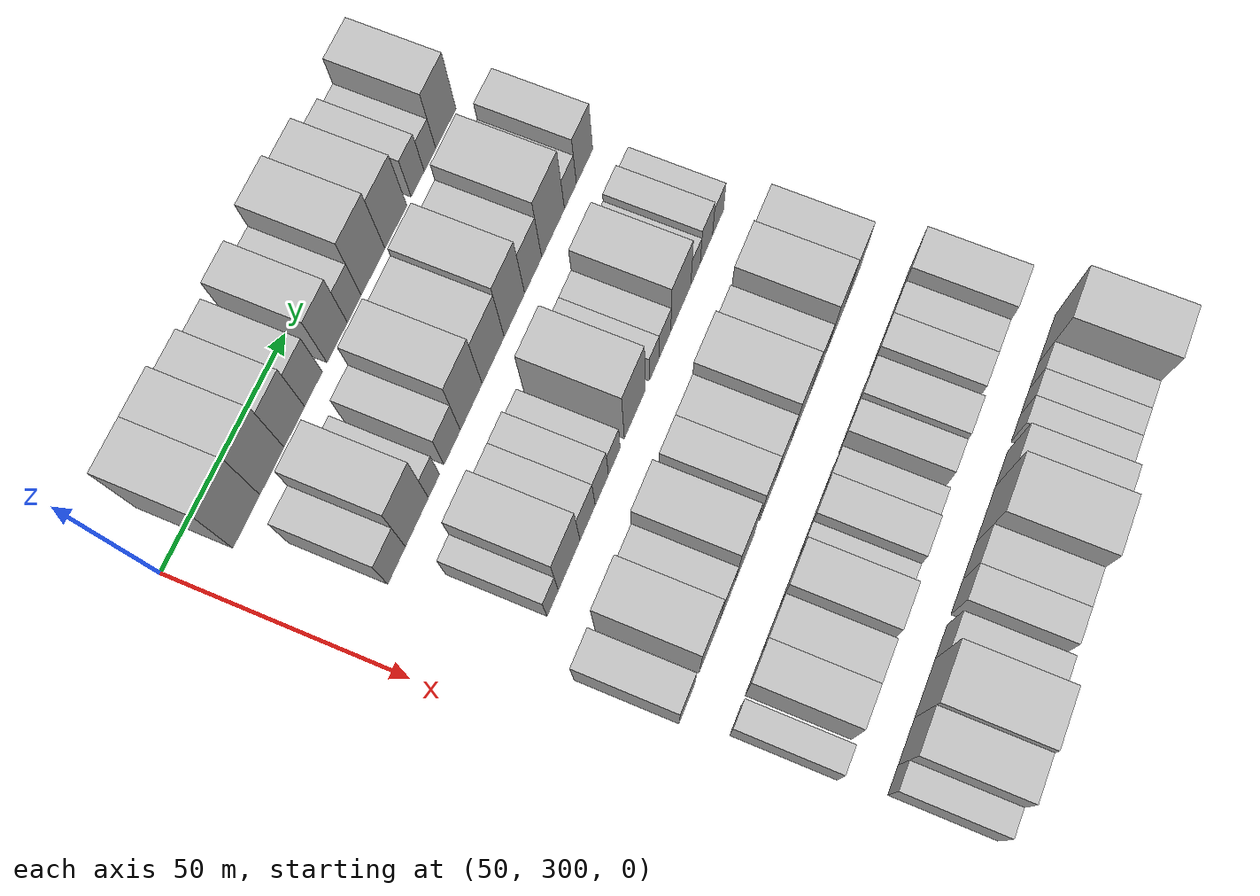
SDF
<sdf version="1.6">
 <world name="default">
  <model name="building_94">
   <static>1</static>
   <pose>50.0000 314.5043 0 0.000000 0.000000 0.000000</pose>
   <link name="link">
    <pose>0 0 12.00 0 0 0</pose>
    <collision name="collision"><geometry><box><size>20.0000 10.8248 24.0000</size></box></geometry></collision>
    <visual name="visual">
     <cast_shadows>0</cast_shadows>
     <geometry><box><size>20.0000 10.8248 24.0000</size></box></geometry>
     <material>
      <script>
       <uri>model://HANNAS_wall/materials/scripts</uri>
       <uri>model://HANNAS_wall/materials/textures</uri>
       <name>vrc/HANNAS_wall</name>
      </script>
     </material>
    </visual>
   </link>
  </model>
  <model name="building_95">
   <static>1</static>
   <pose>50.0000 324.8412 0 0.000000 0.000000 0.000000</pose>
   <link name="link">
    <pose>0 0 12.00 0 0 0</pose>
    <collision name="collision"><geometry><box><size>20.0000 9.8490 24.0000</size></box></geometry></collision>
    <visual name="visual">
     <cast_shadows>0</cast_shadows>
     <geometry><box><size>20.0000 9.8490 24.0000</size></box></geometry>
     <material>
      <script>
       <uri>model://HANNAS_wall/materials/scripts</uri>
       <uri>model://HANNAS_wall/materials/textures</uri>
       <name>vrc/HANNAS_wall</name>
      </script>
     </material>
    </visual>
   </link>
  </model>
  <model name="building_96">
   <static>1</static>
   <pose>50.0000 334.0753 0 0.000000 0.000000 0.000000</pose>
   <link name="link">
    <pose>0 0 10.50 0 0 0</pose>
    <collision name="collision"><geometry><box><size>20.0000 8.6192 21.0000</size></box></geometry></collision>
    <visual name="visual">
     <cast_shadows>0</cast_shadows>
     <geometry><box><size>20.0000 8.6192 21.0000</size></box></geometry>
     <material>
      <script>
       <uri>model://HANNAS_wall/materials/scripts</uri>
       <uri>model://HANNAS_wall/materials/textures</uri>
       <name>vrc/HANNAS_wall</name>
      </script>
     </material>
    </visual>
   </link>
  </model>
  <model name="building_97">
   <static>1</static>
   <pose>50.0000 342.1089 0 0.000000 0.000000 0.000000</pose>
   <link name="link">
    <pose>0 0 9.00 0 0 0</pose>
    <collision name="collision"><geometry><box><size>20.0000 7.4479 18.0000</size></box></geometry></collision>
    <visual name="visual">
     <cast_shadows>0</cast_shadows>
     <geometry><box><size>20.0000 7.4479 18.0000</size></box></geometry>
     <material>
      <script>
       <uri>model://HANNAS_wall/materials/scripts</uri>
       <uri>model://HANNAS_wall/materials/textures</uri>
       <name>vrc/HANNAS_wall</name>
      </script>
     </material>
    </visual>
   </link>
  </model>
  <model name="building_98">
   <static>1</static>
   <pose>50.0000 352.2391 0 0.000000 0.000000 0.000000</pose>
   <link name="link">
    <pose>0 0 10.50 0 0 0</pose>
    <collision name="collision"><geometry><box><size>20.0000 8.8126 21.0000</size></box></geometry></collision>
    <visual name="visual">
     <cast_shadows>0</cast_shadows>
     <geometry><box><size>20.0000 8.8126 21.0000</size></box></geometry>
     <material>
      <script>
       <uri>model://HANNAS_wall/materials/scripts</uri>
       <uri>model://HANNAS_wall/materials/textures</uri>
       <name>vrc/HANNAS_wall</name>
      </script>
     </material>
    </visual>
   </link>
  </model>
  <model name="building_99">
   <static>1</static>
   <pose>50.0000 359.6676 0 0.000000 0.000000 0.000000</pose>
   <link name="link">
    <pose>0 0 7.50 0 0 0</pose>
    <collision name="collision"><geometry><box><size>20.0000 6.0443 15.0000</size></box></geometry></collision>
    <visual name="visual">
     <cast_shadows>0</cast_shadows>
     <geometry><box><size>20.0000 6.0443 15.0000</size></box></geometry>
     <material>
      <script>
       <uri>model://HANNAS_wall/materials/scripts</uri>
       <uri>model://HANNAS_wall/materials/textures</uri>
       <name>vrc/HANNAS_wall</name>
      </script>
     </material>
    </visual>
   </link>
  </model>
  <model name="building_100">
   <static>1</static>
   <pose>50.0000 367.9929 0 0.000000 0.000000 0.000000</pose>
   <link name="link">
    <pose>0 0 12.00 0 0 0</pose>
    <collision name="collision"><geometry><box><size>20.0000 10.6063 24.0000</size></box></geometry></collision>
    <visual name="visual">
     <cast_shadows>0</cast_shadows>
     <geometry><box><size>20.0000 10.6063 24.0000</size></box></geometry>
     <material>
      <script>
       <uri>model://HANNAS_wall/materials/scripts</uri>
       <uri>model://HANNAS_wall/materials/textures</uri>
       <name>vrc/HANNAS_wall</name>
      </script>
     </material>
    </visual>
   </link>
  </model>
  <model name="building_101">
   <static>1</static>
   <pose>50.0000 378.2793 0 0.000000 0.000000 0.000000</pose>
   <link name="link">
    <pose>0 0 10.50 0 0 0</pose>
    <collision name="collision"><geometry><box><size>20.0000 9.9666 21.0000</size></box></geometry></collision>
    <visual name="visual">
     <cast_shadows>0</cast_shadows>
     <geometry><box><size>20.0000 9.9666 21.0000</size></box></geometry>
     <material>
      <script>
       <uri>model://HANNAS_wall/materials/scripts</uri>
       <uri>model://HANNAS_wall/materials/textures</uri>
       <name>vrc/HANNAS_wall</name>
      </script>
     </material>
    </visual>
   </link>
  </model>
  <model name="building_102">
   <static>1</static>
   <pose>50.0000 388.3004 0 0.000000 0.000000 0.000000</pose>
   <link name="link">
    <pose>0 0 7.50 0 0 0</pose>
    <collision name="collision"><geometry><box><size>20.0000 6.0756 15.0000</size></box></geometry></collision>
    <visual name="visual">
     <cast_shadows>0</cast_shadows>
     <geometry><box><size>20.0000 6.0756 15.0000</size></box></geometry>
     <material>
      <script>
       <uri>model://HANNAS_wall/materials/scripts</uri>
       <uri>model://HANNAS_wall/materials/textures</uri>
       <name>vrc/HANNAS_wall</name>
      </script>
     </material>
    </visual>
   </link>
  </model>
  <model name="building_103">
   <static>1</static>
   <pose>50.0000 394.0320 0 0.000000 0.000000 0.000000</pose>
   <link name="link">
    <pose>0 0 6.00 0 0 0</pose>
    <collision name="collision"><geometry><box><size>20.0000 5.3875 12.0000</size></box></geometry></collision>
    <visual name="visual">
     <cast_shadows>0</cast_shadows>
     <geometry><box><size>20.0000 5.3875 12.0000</size></box></geometry>
     <material>
      <script>
       <uri>model://HANNAS_wall/materials/scripts</uri>
       <uri>model://HANNAS_wall/materials/textures</uri>
       <name>vrc/HANNAS_wall</name>
      </script>
     </material>
    </visual>
   </link>
  </model>
  <model name="building_104">
   <static>1</static>
   <pose>50.0000 401.5370 0 0.000000 0.000000 0.000000</pose>
   <link name="link">
    <pose>0 0 10.50 0 0 0</pose>
    <collision name="collision"><geometry><box><size>20.0000 9.6226 21.0000</size></box></geometry></collision>
    <visual name="visual">
     <cast_shadows>0</cast_shadows>
     <geometry><box><size>20.0000 9.6226 21.0000</size></box></geometry>
     <material>
      <script>
       <uri>model://HANNAS_wall/materials/scripts</uri>
       <uri>model://HANNAS_wall/materials/textures</uri>
       <name>vrc/HANNAS_wall</name>
      </script>
     </material>
    </visual>
   </link>
  </model>
  <model name="building_201">
   <static>1</static>
   <pose>79.0000 317.5472 0 0.000000 0.000000 0.000000</pose>
   <link name="link">
    <pose>0 0 7.50 0 0 0</pose>
    <collision name="collision"><geometry><box><size>20.0000 7.4729 15.0000</size></box></geometry></collision>
    <visual name="visual">
     <cast_shadows>0</cast_shadows>
     <geometry><box><size>20.0000 7.4729 15.0000</size></box></geometry>
     <material>
      <script>
       <uri>model://HANNAS_wall/materials/scripts</uri>
       <uri>model://HANNAS_wall/materials/textures</uri>
       <name>vrc/HANNAS_wall</name>
      </script>
     </material>
    </visual>
   </link>
  </model>
  <model name="building_202">
   <static>1</static>
   <pose>79.0000 326.2475 0 0.000000 0.000000 0.000000</pose>
   <link name="link">
    <pose>0 0 12.00 0 0 0</pose>
    <collision name="collision"><geometry><box><size>20.0000 9.9276 24.0000</size></box></geometry></collision>
    <visual name="visual">
     <cast_shadows>0</cast_shadows>
     <geometry><box><size>20.0000 9.9276 24.0000</size></box></geometry>
     <material>
      <script>
       <uri>model://HANNAS_wall/materials/scripts</uri>
       <uri>model://HANNAS_wall/materials/textures</uri>
       <name>vrc/HANNAS_wall</name>
      </script>
     </material>
    </visual>
   </link>
  </model>
  <model name="building_203">
   <static>1</static>
   <pose>79.0000 333.6321 0 0.000000 0.000000 0.000000</pose>
   <link name="link">
    <pose>0 0 6.00 0 0 0</pose>
    <collision name="collision"><geometry><box><size>20.0000 4.8417 12.0000</size></box></geometry></collision>
    <visual name="visual">
     <cast_shadows>0</cast_shadows>
     <geometry><box><size>20.0000 4.8417 12.0000</size></box></geometry>
     <material>
      <script>
       <uri>model://HANNAS_wall/materials/scripts</uri>
       <uri>model://HANNAS_wall/materials/textures</uri>
       <name>vrc/HANNAS_wall</name>
      </script>
     </material>
    </visual>
   </link>
  </model>
  <model name="building_204">
   <static>1</static>
   <pose>79.0000 341.6597 0 0.000000 0.000000 0.000000</pose>
   <link name="link">
    <pose>0 0 7.50 0 0 0</pose>
    <collision name="collision"><geometry><box><size>20.0000 7.2135 15.0000</size></box></geometry></collision>
    <visual name="visual">
     <cast_shadows>0</cast_shadows>
     <geometry><box><size>20.0000 7.2135 15.0000</size></box></geometry>
     <material>
      <script>
       <uri>model://HANNAS_wall/materials/scripts</uri>
       <uri>model://HANNAS_wall/materials/textures</uri>
       <name>vrc/HANNAS_wall</name>
      </script>
     </material>
    </visual>
   </link>
  </model>
  <model name="building_205">
   <static>1</static>
   <pose>79.0000 350.2022 0 0.000000 0.000000 0.000000</pose>
   <link name="link">
    <pose>0 0 12.00 0 0 0</pose>
    <collision name="collision"><geometry><box><size>20.0000 9.8715 24.0000</size></box></geometry></collision>
    <visual name="visual">
     <cast_shadows>0</cast_shadows>
     <geometry><box><size>20.0000 9.8715 24.0000</size></box></geometry>
     <material>
      <script>
       <uri>model://HANNAS_wall/materials/scripts</uri>
       <uri>model://HANNAS_wall/materials/textures</uri>
       <name>vrc/HANNAS_wall</name>
      </script>
     </material>
    </visual>
   </link>
  </model>
  <model name="building_206">
   <static>1</static>
   <pose>79.0000 360.2403 0 0.000000 0.000000 0.000000</pose>
   <link name="link">
    <pose>0 0 10.50 0 0 0</pose>
    <collision name="collision"><geometry><box><size>20.0000 10.2047 21.0000</size></box></geometry></collision>
    <visual name="visual">
     <cast_shadows>0</cast_shadows>
     <geometry><box><size>20.0000 10.2047 21.0000</size></box></geometry>
     <material>
      <script>
       <uri>model://HANNAS_wall/materials/scripts</uri>
       <uri>model://HANNAS_wall/materials/textures</uri>
       <name>vrc/HANNAS_wall</name>
      </script>
     </material>
    </visual>
   </link>
  </model>
  <model name="building_207">
   <static>1</static>
   <pose>79.0000 370.1721 0 0.000000 0.000000 0.000000</pose>
   <link name="link">
    <pose>0 0 12.00 0 0 0</pose>
    <collision name="collision"><geometry><box><size>20.0000 9.6587 24.0000</size></box></geometry></collision>
    <visual name="visual">
     <cast_shadows>0</cast_shadows>
     <geometry><box><size>20.0000 9.6587 24.0000</size></box></geometry>
     <material>
      <script>
       <uri>model://HANNAS_wall/materials/scripts</uri>
       <uri>model://HANNAS_wall/materials/textures</uri>
       <name>vrc/HANNAS_wall</name>
      </script>
     </material>
    </visual>
   </link>
  </model>
  <model name="building_208">
   <static>1</static>
   <pose>79.0000 379.0720 0 0.000000 0.000000 0.000000</pose>
   <link name="link">
    <pose>0 0 9.00 0 0 0</pose>
    <collision name="collision"><geometry><box><size>20.0000 8.1412 18.0000</size></box></geometry></collision>
    <visual name="visual">
     <cast_shadows>0</cast_shadows>
     <geometry><box><size>20.0000 8.1412 18.0000</size></box></geometry>
     <material>
      <script>
       <uri>model://HANNAS_wall/materials/scripts</uri>
       <uri>model://HANNAS_wall/materials/textures</uri>
       <name>vrc/HANNAS_wall</name>
      </script>
     </material>
    </visual>
   </link>
  </model>
  <model name="building_209">
   <static>1</static>
   <pose>79.0000 388.7211 0 0.000000 0.000000 0.000000</pose>
   <link name="link">
    <pose>0 0 12.00 0 0 0</pose>
    <collision name="collision"><geometry><box><size>20.0000 11.1568 24.0000</size></box></geometry></collision>
    <visual name="visual">
     <cast_shadows>0</cast_shadows>
     <geometry><box><size>20.0000 11.1568 24.0000</size></box></geometry>
     <material>
      <script>
       <uri>model://HANNAS_wall/materials/scripts</uri>
       <uri>model://HANNAS_wall/materials/textures</uri>
       <name>vrc/HANNAS_wall</name>
      </script>
     </material>
    </visual>
   </link>
  </model>
  <model name="building_210">
   <static>1</static>
   <pose>79.0000 397.2694 0 0.000000 0.000000 0.000000</pose>
   <link name="link">
    <pose>0 0 6.00 0 0 0</pose>
    <collision name="collision"><geometry><box><size>20.0000 5.9398 12.0000</size></box></geometry></collision>
    <visual name="visual">
     <cast_shadows>0</cast_shadows>
     <geometry><box><size>20.0000 5.9398 12.0000</size></box></geometry>
     <material>
      <script>
       <uri>model://HANNAS_wall/materials/scripts</uri>
       <uri>model://HANNAS_wall/materials/textures</uri>
       <name>vrc/HANNAS_wall</name>
      </script>
     </material>
    </visual>
   </link>
  </model>
  <model name="building_211">
   <static>1</static>
   <pose>79.0000 404.3249 0 0.000000 0.000000 0.000000</pose>
   <link name="link">
    <pose>0 0 9.00 0 0 0</pose>
    <collision name="collision"><geometry><box><size>20.0000 8.1713 18.0000</size></box></geometry></collision>
    <visual name="visual">
     <cast_shadows>0</cast_shadows>
     <geometry><box><size>20.0000 8.1713 18.0000</size></box></geometry>
     <material>
      <script>
       <uri>model://HANNAS_wall/materials/scripts</uri>
       <uri>model://HANNAS_wall/materials/textures</uri>
       <name>vrc/HANNAS_wall</name>
      </script>
     </material>
    </visual>
   </link>
  </model>
  <model name="building_308">
   <static>1</static>
   <pose>108.0000 321.9670 0 0.000000 0.000000 0.000000</pose>
   <link name="link">
    <pose>0 0 6.00 0 0 0</pose>
    <collision name="collision"><geometry><box><size>20.0000 5.0862 12.0000</size></box></geometry></collision>
    <visual name="visual">
     <cast_shadows>0</cast_shadows>
     <geometry><box><size>20.0000 5.0862 12.0000</size></box></geometry>
     <material>
      <script>
       <uri>model://HANNAS_wall/materials/scripts</uri>
       <uri>model://HANNAS_wall/materials/textures</uri>
       <name>vrc/HANNAS_wall</name>
      </script>
     </material>
    </visual>
   </link>
  </model>
  <model name="building_309">
   <static>1</static>
   <pose>108.0000 329.4667 0 0.000000 0.000000 0.000000</pose>
   <link name="link">
    <pose>0 0 10.50 0 0 0</pose>
    <collision name="collision"><geometry><box><size>20.0000 9.9132 21.0000</size></box></geometry></collision>
    <visual name="visual">
     <cast_shadows>0</cast_shadows>
     <geometry><box><size>20.0000 9.9132 21.0000</size></box></geometry>
     <material>
      <script>
       <uri>model://HANNAS_wall/materials/scripts</uri>
       <uri>model://HANNAS_wall/materials/textures</uri>
       <name>vrc/HANNAS_wall</name>
      </script>
     </material>
    </visual>
   </link>
  </model>
  <model name="building_310">
   <static>1</static>
   <pose>108.0000 337.9682 0 0.000000 0.000000 0.000000</pose>
   <link name="link">
    <pose>0 0 7.50 0 0 0</pose>
    <collision name="collision"><geometry><box><size>20.0000 7.0897 15.0000</size></box></geometry></collision>
    <visual name="visual">
     <cast_shadows>0</cast_shadows>
     <geometry><box><size>20.0000 7.0897 15.0000</size></box></geometry>
     <material>
      <script>
       <uri>model://HANNAS_wall/materials/scripts</uri>
       <uri>model://HANNAS_wall/materials/textures</uri>
       <name>vrc/HANNAS_wall</name>
      </script>
     </material>
    </visual>
   </link>
  </model>
  <model name="building_311">
   <static>1</static>
   <pose>108.0000 344.6362 0 0.000000 0.000000 0.000000</pose>
   <link name="link">
    <pose>0 0 7.50 0 0 0</pose>
    <collision name="collision"><geometry><box><size>20.0000 6.2462 15.0000</size></box></geometry></collision>
    <visual name="visual">
     <cast_shadows>0</cast_shadows>
     <geometry><box><size>20.0000 6.2462 15.0000</size></box></geometry>
     <material>
      <script>
       <uri>model://HANNAS_wall/materials/scripts</uri>
       <uri>model://HANNAS_wall/materials/textures</uri>
       <name>vrc/HANNAS_wall</name>
      </script>
     </material>
    </visual>
   </link>
  </model>
  <model name="building_312">
   <static>1</static>
   <pose>108.0000 350.5710 0 0.000000 0.000000 0.000000</pose>
   <link name="link">
    <pose>0 0 6.00 0 0 0</pose>
    <collision name="collision"><geometry><box><size>20.0000 5.6235 12.0000</size></box></geometry></collision>
    <visual name="visual">
     <cast_shadows>0</cast_shadows>
     <geometry><box><size>20.0000 5.6235 12.0000</size></box></geometry>
     <material>
      <script>
       <uri>model://HANNAS_wall/materials/scripts</uri>
       <uri>model://HANNAS_wall/materials/textures</uri>
       <name>vrc/HANNAS_wall</name>
      </script>
     </material>
    </visual>
   </link>
  </model>
  <model name="building_313">
   <static>1</static>
   <pose>108.0000 360.5201 0 0.000000 0.000000 0.000000</pose>
   <link name="link">
    <pose>0 0 12.00 0 0 0</pose>
    <collision name="collision"><geometry><box><size>20.0000 10.2747 24.0000</size></box></geometry></collision>
    <visual name="visual">
     <cast_shadows>0</cast_shadows>
     <geometry><box><size>20.0000 10.2747 24.0000</size></box></geometry>
     <material>
      <script>
       <uri>model://HANNAS_wall/materials/scripts</uri>
       <uri>model://HANNAS_wall/materials/textures</uri>
       <name>vrc/HANNAS_wall</name>
      </script>
     </material>
    </visual>
   </link>
  </model>
  <model name="building_314">
   <static>1</static>
   <pose>108.0000 370.1090 0 0.000000 0.000000 0.000000</pose>
   <link name="link">
    <pose>0 0 6.00 0 0 0</pose>
    <collision name="collision"><geometry><box><size>20.0000 4.9030 12.0000</size></box></geometry></collision>
    <visual name="visual">
     <cast_shadows>0</cast_shadows>
     <geometry><box><size>20.0000 4.9030 12.0000</size></box></geometry>
     <material>
      <script>
       <uri>model://HANNAS_wall/materials/scripts</uri>
       <uri>model://HANNAS_wall/materials/textures</uri>
       <name>vrc/HANNAS_wall</name>
      </script>
     </material>
    </visual>
   </link>
  </model>
  <model name="building_315">
   <static>1</static>
   <pose>108.0000 375.4868 0 0.000000 0.000000 0.000000</pose>
   <link name="link">
    <pose>0 0 6.00 0 0 0</pose>
    <collision name="collision"><geometry><box><size>20.0000 5.8527 12.0000</size></box></geometry></collision>
    <visual name="visual">
     <cast_shadows>0</cast_shadows>
     <geometry><box><size>20.0000 5.8527 12.0000</size></box></geometry>
     <material>
      <script>
       <uri>model://HANNAS_wall/materials/scripts</uri>
       <uri>model://HANNAS_wall/materials/textures</uri>
       <name>vrc/HANNAS_wall</name>
      </script>
     </material>
    </visual>
   </link>
  </model>
  <model name="building_316">
   <static>1</static>
   <pose>108.0000 383.5239 0 0.000000 0.000000 0.000000</pose>
   <link name="link">
    <pose>0 0 10.50 0 0 0</pose>
    <collision name="collision"><geometry><box><size>20.0000 10.2215 21.0000</size></box></geometry></collision>
    <visual name="visual">
     <cast_shadows>0</cast_shadows>
     <geometry><box><size>20.0000 10.2215 21.0000</size></box></geometry>
     <material>
      <script>
       <uri>model://HANNAS_wall/materials/scripts</uri>
       <uri>model://HANNAS_wall/materials/textures</uri>
       <name>vrc/HANNAS_wall</name>
      </script>
     </material>
    </visual>
   </link>
  </model>
  <model name="building_317">
   <static>1</static>
   <pose>108.0000 391.0956 0 0.000000 0.000000 0.000000</pose>
   <link name="link">
    <pose>0 0 6.00 0 0 0</pose>
    <collision name="collision"><geometry><box><size>20.0000 4.9219 12.0000</size></box></geometry></collision>
    <visual name="visual">
     <cast_shadows>0</cast_shadows>
     <geometry><box><size>20.0000 4.9219 12.0000</size></box></geometry>
     <material>
      <script>
       <uri>model://HANNAS_wall/materials/scripts</uri>
       <uri>model://HANNAS_wall/materials/textures</uri>
       <name>vrc/HANNAS_wall</name>
      </script>
     </material>
    </visual>
   </link>
  </model>
  <model name="building_318">
   <static>1</static>
   <pose>108.0000 396.7698 0 0.000000 0.000000 0.000000</pose>
   <link name="link">
    <pose>0 0 7.50 0 0 0</pose>
    <collision name="collision"><geometry><box><size>20.0000 6.4265 15.0000</size></box></geometry></collision>
    <visual name="visual">
     <cast_shadows>0</cast_shadows>
     <geometry><box><size>20.0000 6.4265 15.0000</size></box></geometry>
     <material>
      <script>
       <uri>model://HANNAS_wall/materials/scripts</uri>
       <uri>model://HANNAS_wall/materials/textures</uri>
       <name>vrc/HANNAS_wall</name>
      </script>
     </material>
    </visual>
   </link>
  </model>
  <model name="building_319">
   <static>1</static>
   <pose>108.0000 402.9070 0 0.000000 0.000000 0.000000</pose>
   <link name="link">
    <pose>0 0 6.00 0 0 0</pose>
    <collision name="collision"><geometry><box><size>20.0000 5.8480 12.0000</size></box></geometry></collision>
    <visual name="visual">
     <cast_shadows>0</cast_shadows>
     <geometry><box><size>20.0000 5.8480 12.0000</size></box></geometry>
     <material>
      <script>
       <uri>model://HANNAS_wall/materials/scripts</uri>
       <uri>model://HANNAS_wall/materials/textures</uri>
       <name>vrc/HANNAS_wall</name>
      </script>
     </material>
    </visual>
   </link>
  </model>
  <model name="building_420">
   <static>1</static>
   <pose>137.0000 314.5864 0 0.000000 0.000000 0.000000</pose>
   <link name="link">
    <pose>0 0 7.50 0 0 0</pose>
    <collision name="collision"><geometry><box><size>20.0000 7.4906 15.0000</size></box></geometry></collision>
    <visual name="visual">
     <cast_shadows>0</cast_shadows>
     <geometry><box><size>20.0000 7.4906 15.0000</size></box></geometry>
     <material>
      <script>
       <uri>model://HANNAS_wall/materials/scripts</uri>
       <uri>model://HANNAS_wall/materials/textures</uri>
       <name>vrc/HANNAS_wall</name>
      </script>
     </material>
    </visual>
   </link>
  </model>
  <model name="building_421">
   <static>1</static>
   <pose>137.0000 325.4100 0 0.000000 0.000000 0.000000</pose>
   <link name="link">
    <pose>0 0 10.50 0 0 0</pose>
    <collision name="collision"><geometry><box><size>20.0000 10.1567 21.0000</size></box></geometry></collision>
    <visual name="visual">
     <cast_shadows>0</cast_shadows>
     <geometry><box><size>20.0000 10.1567 21.0000</size></box></geometry>
     <material>
      <script>
       <uri>model://HANNAS_wall/materials/scripts</uri>
       <uri>model://HANNAS_wall/materials/textures</uri>
       <name>vrc/HANNAS_wall</name>
      </script>
     </material>
    </visual>
   </link>
  </model>
  <model name="building_422">
   <static>1</static>
   <pose>137.0000 334.1000 0 0.000000 0.000000 0.000000</pose>
   <link name="link">
    <pose>0 0 7.50 0 0 0</pose>
    <collision name="collision"><geometry><box><size>20.0000 7.2233 15.0000</size></box></geometry></collision>
    <visual name="visual">
     <cast_shadows>0</cast_shadows>
     <geometry><box><size>20.0000 7.2233 15.0000</size></box></geometry>
     <material>
      <script>
       <uri>model://HANNAS_wall/materials/scripts</uri>
       <uri>model://HANNAS_wall/materials/textures</uri>
       <name>vrc/HANNAS_wall</name>
      </script>
     </material>
    </visual>
   </link>
  </model>
  <model name="building_423">
   <static>1</static>
   <pose>137.0000 342.5616 0 0.000000 0.000000 0.000000</pose>
   <link name="link">
    <pose>0 0 12.00 0 0 0</pose>
    <collision name="collision"><geometry><box><size>20.0000 9.6999 24.0000</size></box></geometry></collision>
    <visual name="visual">
     <cast_shadows>0</cast_shadows>
     <geometry><box><size>20.0000 9.6999 24.0000</size></box></geometry>
     <material>
      <script>
       <uri>model://HANNAS_wall/materials/scripts</uri>
       <uri>model://HANNAS_wall/materials/textures</uri>
       <name>vrc/HANNAS_wall</name>
      </script>
     </material>
    </visual>
   </link>
  </model>
  <model name="building_424">
   <static>1</static>
   <pose>137.0000 354.2067 0 0.000000 0.000000 0.000000</pose>
   <link name="link">
    <pose>0 0 9.00 0 0 0</pose>
    <collision name="collision"><geometry><box><size>20.0000 7.5902 18.0000</size></box></geometry></collision>
    <visual name="visual">
     <cast_shadows>0</cast_shadows>
     <geometry><box><size>20.0000 7.5902 18.0000</size></box></geometry>
     <material>
      <script>
       <uri>model://HANNAS_wall/materials/scripts</uri>
       <uri>model://HANNAS_wall/materials/textures</uri>
       <name>vrc/HANNAS_wall</name>
      </script>
     </material>
    </visual>
   </link>
  </model>
  <model name="building_425">
   <static>1</static>
   <pose>137.0000 362.0711 0 0.000000 0.000000 0.000000</pose>
   <link name="link">
    <pose>0 0 9.00 0 0 0</pose>
    <collision name="collision"><geometry><box><size>20.0000 8.1386 18.0000</size></box></geometry></collision>
    <visual name="visual">
     <cast_shadows>0</cast_shadows>
     <geometry><box><size>20.0000 8.1386 18.0000</size></box></geometry>
     <material>
      <script>
       <uri>model://HANNAS_wall/materials/scripts</uri>
       <uri>model://HANNAS_wall/materials/textures</uri>
       <name>vrc/HANNAS_wall</name>
      </script>
     </material>
    </visual>
   </link>
  </model>
  <model name="building_426">
   <static>1</static>
   <pose>137.0000 371.3056 0 0.000000 0.000000 0.000000</pose>
   <link name="link">
    <pose>0 0 12.00 0 0 0</pose>
    <collision name="collision"><geometry><box><size>20.0000 10.3305 24.0000</size></box></geometry></collision>
    <visual name="visual">
     <cast_shadows>0</cast_shadows>
     <geometry><box><size>20.0000 10.3305 24.0000</size></box></geometry>
     <material>
      <script>
       <uri>model://HANNAS_wall/materials/scripts</uri>
       <uri>model://HANNAS_wall/materials/textures</uri>
       <name>vrc/HANNAS_wall</name>
      </script>
     </material>
    </visual>
   </link>
  </model>
  <model name="building_427">
   <static>1</static>
   <pose>137.0000 380.4439 0 0.000000 0.000000 0.000000</pose>
   <link name="link">
    <pose>0 0 9.00 0 0 0</pose>
    <collision name="collision"><geometry><box><size>20.0000 7.9461 18.0000</size></box></geometry></collision>
    <visual name="visual">
     <cast_shadows>0</cast_shadows>
     <geometry><box><size>20.0000 7.9461 18.0000</size></box></geometry>
     <material>
      <script>
       <uri>model://HANNAS_wall/materials/scripts</uri>
       <uri>model://HANNAS_wall/materials/textures</uri>
       <name>vrc/HANNAS_wall</name>
      </script>
     </material>
    </visual>
   </link>
  </model>
  <model name="building_428">
   <static>1</static>
   <pose>137.0000 390.2503 0 0.000000 0.000000 0.000000</pose>
   <link name="link">
    <pose>0 0 12.00 0 0 0</pose>
    <collision name="collision"><geometry><box><size>20.0000 9.6668 24.0000</size></box></geometry></collision>
    <visual name="visual">
     <cast_shadows>0</cast_shadows>
     <geometry><box><size>20.0000 9.6668 24.0000</size></box></geometry>
     <material>
      <script>
       <uri>model://HANNAS_wall/materials/scripts</uri>
       <uri>model://HANNAS_wall/materials/textures</uri>
       <name>vrc/HANNAS_wall</name>
      </script>
     </material>
    </visual>
   </link>
  </model>
  <model name="building_429">
   <static>1</static>
   <pose>137.0000 399.7851 0 0.000000 0.000000 0.000000</pose>
   <link name="link">
    <pose>0 0 10.50 0 0 0</pose>
    <collision name="collision"><geometry><box><size>20.0000 9.4027 21.0000</size></box></geometry></collision>
    <visual name="visual">
     <cast_shadows>0</cast_shadows>
     <geometry><box><size>20.0000 9.4027 21.0000</size></box></geometry>
     <material>
      <script>
       <uri>model://HANNAS_wall/materials/scripts</uri>
       <uri>model://HANNAS_wall/materials/textures</uri>
       <name>vrc/HANNAS_wall</name>
      </script>
     </material>
    </visual>
   </link>
  </model>
  <model name="building_538">
   <static>1</static>
   <pose>166.0000 315.0952 0 0.000000 0.000000 0.000000</pose>
   <link name="link">
    <pose>0 0 6.00 0 0 0</pose>
    <collision name="collision"><geometry><box><size>20.0000 5.4457 12.0000</size></box></geometry></collision>
    <visual name="visual">
     <cast_shadows>0</cast_shadows>
     <geometry><box><size>20.0000 5.4457 12.0000</size></box></geometry>
     <material>
      <script>
       <uri>model://HANNAS_wall/materials/scripts</uri>
       <uri>model://HANNAS_wall/materials/textures</uri>
       <name>vrc/HANNAS_wall</name>
      </script>
     </material>
    </visual>
   </link>
  </model>
  <model name="building_539">
   <static>1</static>
   <pose>166.0000 323.8724 0 0.000000 0.000000 0.000000</pose>
   <link name="link">
    <pose>0 0 9.00 0 0 0</pose>
    <collision name="collision"><geometry><box><size>20.0000 8.1087 18.0000</size></box></geometry></collision>
    <visual name="visual">
     <cast_shadows>0</cast_shadows>
     <geometry><box><size>20.0000 8.1087 18.0000</size></box></geometry>
     <material>
      <script>
       <uri>model://HANNAS_wall/materials/scripts</uri>
       <uri>model://HANNAS_wall/materials/textures</uri>
       <name>vrc/HANNAS_wall</name>
      </script>
     </material>
    </visual>
   </link>
  </model>
  <model name="building_540">
   <static>1</static>
   <pose>166.0000 331.9331 0 0.000000 0.000000 0.000000</pose>
   <link name="link">
    <pose>0 0 9.00 0 0 0</pose>
    <collision name="collision"><geometry><box><size>20.0000 8.0126 18.0000</size></box></geometry></collision>
    <visual name="visual">
     <cast_shadows>0</cast_shadows>
     <geometry><box><size>20.0000 8.0126 18.0000</size></box></geometry>
     <material>
      <script>
       <uri>model://HANNAS_wall/materials/scripts</uri>
       <uri>model://HANNAS_wall/materials/textures</uri>
       <name>vrc/HANNAS_wall</name>
      </script>
     </material>
    </visual>
   </link>
  </model>
  <model name="building_541">
   <static>1</static>
   <pose>166.0000 341.3146 0 0.000000 0.000000 0.000000</pose>
   <link name="link">
    <pose>0 0 10.50 0 0 0</pose>
    <collision name="collision"><geometry><box><size>20.0000 8.7504 21.0000</size></box></geometry></collision>
    <visual name="visual">
     <cast_shadows>0</cast_shadows>
     <geometry><box><size>20.0000 8.7504 21.0000</size></box></geometry>
     <material>
      <script>
       <uri>model://HANNAS_wall/materials/scripts</uri>
       <uri>model://HANNAS_wall/materials/textures</uri>
       <name>vrc/HANNAS_wall</name>
      </script>
     </material>
    </visual>
   </link>
  </model>
  <model name="building_542">
   <static>1</static>
   <pose>166.0000 348.3075 0 0.000000 0.000000 0.000000</pose>
   <link name="link">
    <pose>0 0 6.00 0 0 0</pose>
    <collision name="collision"><geometry><box><size>20.0000 5.2354 12.0000</size></box></geometry></collision>
    <visual name="visual">
     <cast_shadows>0</cast_shadows>
     <geometry><box><size>20.0000 5.2354 12.0000</size></box></geometry>
     <material>
      <script>
       <uri>model://HANNAS_wall/materials/scripts</uri>
       <uri>model://HANNAS_wall/materials/textures</uri>
       <name>vrc/HANNAS_wall</name>
      </script>
     </material>
    </visual>
   </link>
  </model>
  <model name="building_543">
   <static>1</static>
   <pose>166.0000 354.7720 0 0.000000 0.000000 0.000000</pose>
   <link name="link">
    <pose>0 0 9.00 0 0 0</pose>
    <collision name="collision"><geometry><box><size>20.0000 7.6938 18.0000</size></box></geometry></collision>
    <visual name="visual">
     <cast_shadows>0</cast_shadows>
     <geometry><box><size>20.0000 7.6938 18.0000</size></box></geometry>
     <material>
      <script>
       <uri>model://HANNAS_wall/materials/scripts</uri>
       <uri>model://HANNAS_wall/materials/textures</uri>
       <name>vrc/HANNAS_wall</name>
      </script>
     </material>
    </visual>
   </link>
  </model>
  <model name="building_544">
   <static>1</static>
   <pose>166.0000 361.6921 0 0.000000 0.000000 0.000000</pose>
   <link name="link">
    <pose>0 0 7.50 0 0 0</pose>
    <collision name="collision"><geometry><box><size>20.0000 6.1464 15.0000</size></box></geometry></collision>
    <visual name="visual">
     <cast_shadows>0</cast_shadows>
     <geometry><box><size>20.0000 6.1464 15.0000</size></box></geometry>
     <material>
      <script>
       <uri>model://HANNAS_wall/materials/scripts</uri>
       <uri>model://HANNAS_wall/materials/textures</uri>
       <name>vrc/HANNAS_wall</name>
      </script>
     </material>
    </visual>
   </link>
  </model>
  <model name="building_545">
   <static>1</static>
   <pose>166.0000 371.0302 0 0.000000 0.000000 0.000000</pose>
   <link name="link">
    <pose>0 0 7.50 0 0 0</pose>
    <collision name="collision"><geometry><box><size>20.0000 6.5298 15.0000</size></box></geometry></collision>
    <visual name="visual">
     <cast_shadows>0</cast_shadows>
     <geometry><box><size>20.0000 6.5298 15.0000</size></box></geometry>
     <material>
      <script>
       <uri>model://HANNAS_wall/materials/scripts</uri>
       <uri>model://HANNAS_wall/materials/textures</uri>
       <name>vrc/HANNAS_wall</name>
      </script>
     </material>
    </visual>
   </link>
  </model>
  <model name="building_546">
   <static>1</static>
   <pose>166.0000 378.0877 0 0.000000 0.000000 0.000000</pose>
   <link name="link">
    <pose>0 0 9.00 0 0 0</pose>
    <collision name="collision"><geometry><box><size>20.0000 7.5850 18.0000</size></box></geometry></collision>
    <visual name="visual">
     <cast_shadows>0</cast_shadows>
     <geometry><box><size>20.0000 7.5850 18.0000</size></box></geometry>
     <material>
      <script>
       <uri>model://HANNAS_wall/materials/scripts</uri>
       <uri>model://HANNAS_wall/materials/textures</uri>
       <name>vrc/HANNAS_wall</name>
      </script>
     </material>
    </visual>
   </link>
  </model>
  <model name="building_547">
   <static>1</static>
   <pose>166.0000 388.3872 0 0.000000 0.000000 0.000000</pose>
   <link name="link">
    <pose>0 0 7.50 0 0 0</pose>
    <collision name="collision"><geometry><box><size>20.0000 7.0140 15.0000</size></box></geometry></collision>
    <visual name="visual">
     <cast_shadows>0</cast_shadows>
     <geometry><box><size>20.0000 7.0140 15.0000</size></box></geometry>
     <material>
      <script>
       <uri>model://HANNAS_wall/materials/scripts</uri>
       <uri>model://HANNAS_wall/materials/textures</uri>
       <name>vrc/HANNAS_wall</name>
      </script>
     </material>
    </visual>
   </link>
  </model>
  <model name="building_548">
   <static>1</static>
   <pose>166.0000 395.2589 0 0.000000 0.000000 0.000000</pose>
   <link name="link">
    <pose>0 0 7.50 0 0 0</pose>
    <collision name="collision"><geometry><box><size>20.0000 6.7296 15.0000</size></box></geometry></collision>
    <visual name="visual">
     <cast_shadows>0</cast_shadows>
     <geometry><box><size>20.0000 6.7296 15.0000</size></box></geometry>
     <material>
      <script>
       <uri>model://HANNAS_wall/materials/scripts</uri>
       <uri>model://HANNAS_wall/materials/textures</uri>
       <name>vrc/HANNAS_wall</name>
      </script>
     </material>
    </visual>
   </link>
  </model>
  <model name="building_549">
   <static>1</static>
   <pose>166.0000 402.9588 0 0.000000 0.000000 0.000000</pose>
   <link name="link">
    <pose>0 0 10.50 0 0 0</pose>
    <collision name="collision"><geometry><box><size>20.0000 8.6702 21.0000</size></box></geometry></collision>
    <visual name="visual">
     <cast_shadows>0</cast_shadows>
     <geometry><box><size>20.0000 8.6702 21.0000</size></box></geometry>
     <material>
      <script>
       <uri>model://HANNAS_wall/materials/scripts</uri>
       <uri>model://HANNAS_wall/materials/textures</uri>
       <name>vrc/HANNAS_wall</name>
      </script>
     </material>
    </visual>
   </link>
  </model>
  <model name="building_658">
   <static>1</static>
   <pose>195.0000 316.0746 0 0.000000 0.000000 0.000000</pose>
   <link name="link">
    <pose>0 0 6.00 0 0 0</pose>
    <collision name="collision"><geometry><box><size>20.0000 5.4676 12.0000</size></box></geometry></collision>
    <visual name="visual">
     <cast_shadows>0</cast_shadows>
     <geometry><box><size>20.0000 5.4676 12.0000</size></box></geometry>
     <material>
      <script>
       <uri>model://HANNAS_wall/materials/scripts</uri>
       <uri>model://HANNAS_wall/materials/textures</uri>
       <name>vrc/HANNAS_wall</name>
      </script>
     </material>
    </visual>
   </link>
  </model>
  <model name="building_659">
   <static>1</static>
   <pose>195.0000 323.1826 0 0.000000 0.000000 0.000000</pose>
   <link name="link">
    <pose>0 0 10.50 0 0 0</pose>
    <collision name="collision"><geometry><box><size>20.0000 8.7484 21.0000</size></box></geometry></collision>
    <visual name="visual">
     <cast_shadows>0</cast_shadows>
     <geometry><box><size>20.0000 8.7484 21.0000</size></box></geometry>
     <material>
      <script>
       <uri>model://HANNAS_wall/materials/scripts</uri>
       <uri>model://HANNAS_wall/materials/textures</uri>
       <name>vrc/HANNAS_wall</name>
      </script>
     </material>
    </visual>
   </link>
  </model>
  <model name="building_660">
   <static>1</static>
   <pose>195.0000 333.1229 0 0.000000 0.000000 0.000000</pose>
   <link name="link">
    <pose>0 0 12.00 0 0 0</pose>
    <collision name="collision"><geometry><box><size>20.0000 11.1322 24.0000</size></box></geometry></collision>
    <visual name="visual">
     <cast_shadows>0</cast_shadows>
     <geometry><box><size>20.0000 11.1322 24.0000</size></box></geometry>
     <material>
      <script>
       <uri>model://HANNAS_wall/materials/scripts</uri>
       <uri>model://HANNAS_wall/materials/textures</uri>
       <name>vrc/HANNAS_wall</name>
      </script>
     </material>
    </visual>
   </link>
  </model>
  <model name="building_661">
   <static>1</static>
   <pose>195.0000 341.9652 0 0.000000 0.000000 0.000000</pose>
   <link name="link">
    <pose>0 0 7.50 0 0 0</pose>
    <collision name="collision"><geometry><box><size>20.0000 6.5522 15.0000</size></box></geometry></collision>
    <visual name="visual">
     <cast_shadows>0</cast_shadows>
     <geometry><box><size>20.0000 6.5522 15.0000</size></box></geometry>
     <material>
      <script>
       <uri>model://HANNAS_wall/materials/scripts</uri>
       <uri>model://HANNAS_wall/materials/textures</uri>
       <name>vrc/HANNAS_wall</name>
      </script>
     </material>
    </visual>
   </link>
  </model>
  <model name="building_662">
   <static>1</static>
   <pose>195.0000 350.6748 0 0.000000 0.000000 0.000000</pose>
   <link name="link">
    <pose>0 0 7.50 0 0 0</pose>
    <collision name="collision"><geometry><box><size>20.0000 6.8670 15.0000</size></box></geometry></collision>
    <visual name="visual">
     <cast_shadows>0</cast_shadows>
     <geometry><box><size>20.0000 6.8670 15.0000</size></box></geometry>
     <material>
      <script>
       <uri>model://HANNAS_wall/materials/scripts</uri>
       <uri>model://HANNAS_wall/materials/textures</uri>
       <name>vrc/HANNAS_wall</name>
      </script>
     </material>
    </visual>
   </link>
  </model>
  <model name="building_663">
   <static>1</static>
   <pose>195.0000 357.8198 0 0.000000 0.000000 0.000000</pose>
   <link name="link">
    <pose>0 0 7.50 0 0 0</pose>
    <collision name="collision"><geometry><box><size>20.0000 7.4230 15.0000</size></box></geometry></collision>
    <visual name="visual">
     <cast_shadows>0</cast_shadows>
     <geometry><box><size>20.0000 7.4230 15.0000</size></box></geometry>
     <material>
      <script>
       <uri>model://HANNAS_wall/materials/scripts</uri>
       <uri>model://HANNAS_wall/materials/textures</uri>
       <name>vrc/HANNAS_wall</name>
      </script>
     </material>
    </visual>
   </link>
  </model>
  <model name="building_664">
   <static>1</static>
   <pose>195.0000 367.2044 0 0.000000 0.000000 0.000000</pose>
   <link name="link">
    <pose>0 0 12.00 0 0 0</pose>
    <collision name="collision"><geometry><box><size>20.0000 11.3461 24.0000</size></box></geometry></collision>
    <visual name="visual">
     <cast_shadows>0</cast_shadows>
     <geometry><box><size>20.0000 11.3461 24.0000</size></box></geometry>
     <material>
      <script>
       <uri>model://HANNAS_wall/materials/scripts</uri>
       <uri>model://HANNAS_wall/materials/textures</uri>
       <name>vrc/HANNAS_wall</name>
      </script>
     </material>
    </visual>
   </link>
  </model>
  <model name="building_665">
   <static>1</static>
   <pose>195.0000 376.5491 0 0.000000 0.000000 0.000000</pose>
   <link name="link">
    <pose>0 0 9.00 0 0 0</pose>
    <collision name="collision"><geometry><box><size>20.0000 7.3434 18.0000</size></box></geometry></collision>
    <visual name="visual">
     <cast_shadows>0</cast_shadows>
     <geometry><box><size>20.0000 7.3434 18.0000</size></box></geometry>
     <material>
      <script>
       <uri>model://HANNAS_wall/materials/scripts</uri>
       <uri>model://HANNAS_wall/materials/textures</uri>
       <name>vrc/HANNAS_wall</name>
      </script>
     </material>
    </visual>
   </link>
  </model>
  <model name="building_666">
   <static>1</static>
   <pose>195.0000 385.0444 0 0.000000 0.000000 0.000000</pose>
   <link name="link">
    <pose>0 0 6.00 0 0 0</pose>
    <collision name="collision"><geometry><box><size>20.0000 5.6472 12.0000</size></box></geometry></collision>
    <visual name="visual">
     <cast_shadows>0</cast_shadows>
     <geometry><box><size>20.0000 5.6472 12.0000</size></box></geometry>
     <material>
      <script>
       <uri>model://HANNAS_wall/materials/scripts</uri>
       <uri>model://HANNAS_wall/materials/textures</uri>
       <name>vrc/HANNAS_wall</name>
      </script>
     </material>
    </visual>
   </link>
  </model>
  <model name="building_667">
   <static>1</static>
   <pose>195.0000 390.6361 0 0.000000 0.000000 0.000000</pose>
   <link name="link">
    <pose>0 0 6.00 0 0 0</pose>
    <collision name="collision"><geometry><box><size>20.0000 5.5361 12.0000</size></box></geometry></collision>
    <visual name="visual">
     <cast_shadows>0</cast_shadows>
     <geometry><box><size>20.0000 5.5361 12.0000</size></box></geometry>
     <material>
      <script>
       <uri>model://HANNAS_wall/materials/scripts</uri>
       <uri>model://HANNAS_wall/materials/textures</uri>
       <name>vrc/HANNAS_wall</name>
      </script>
     </material>
    </visual>
   </link>
  </model>
  <model name="building_668">
   <static>1</static>
   <pose>195.0000 396.1863 0 0.000000 0.000000 0.000000</pose>
   <link name="link">
    <pose>0 0 6.00 0 0 0</pose>
    <collision name="collision"><geometry><box><size>20.0000 5.5645 12.0000</size></box></geometry></collision>
    <visual name="visual">
     <cast_shadows>0</cast_shadows>
     <geometry><box><size>20.0000 5.5645 12.0000</size></box></geometry>
     <material>
      <script>
       <uri>model://HANNAS_wall/materials/scripts</uri>
       <uri>model://HANNAS_wall/materials/textures</uri>
       <name>vrc/HANNAS_wall</name>
      </script>
     </material>
    </visual>
   </link>
  </model>
  <model name="building_669">
   <static>1</static>
   <pose>195.0000 404.2866 0 0.000000 0.000000 0.000000</pose>
   <link name="link">
    <pose>0 0 12.00 0 0 0</pose>
    <collision name="collision"><geometry><box><size>20.0000 10.6361 24.0000</size></box></geometry></collision>
    <visual name="visual">
     <cast_shadows>0</cast_shadows>
     <geometry><box><size>20.0000 10.6361 24.0000</size></box></geometry>
     <material>
      <script>
       <uri>model://HANNAS_wall/materials/scripts</uri>
       <uri>model://HANNAS_wall/materials/textures</uri>
       <name>vrc/HANNAS_wall</name>
      </script>
     </material>
    </visual>
   </link>
  </model>
 </world>
</sdf>
